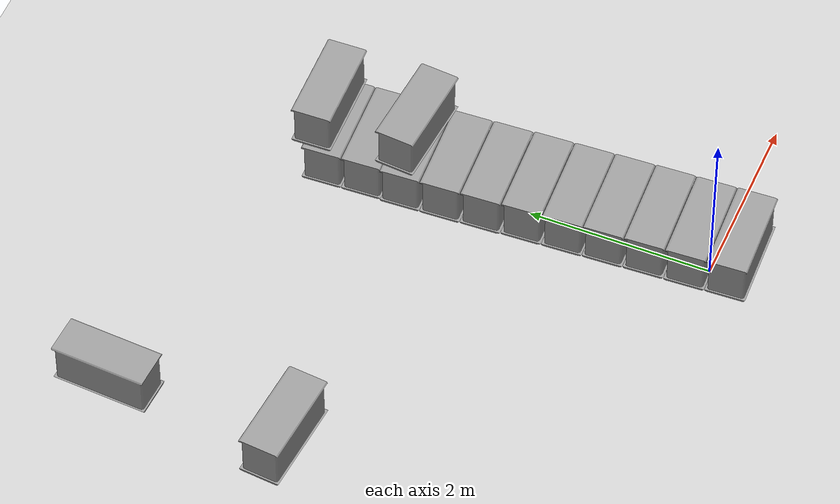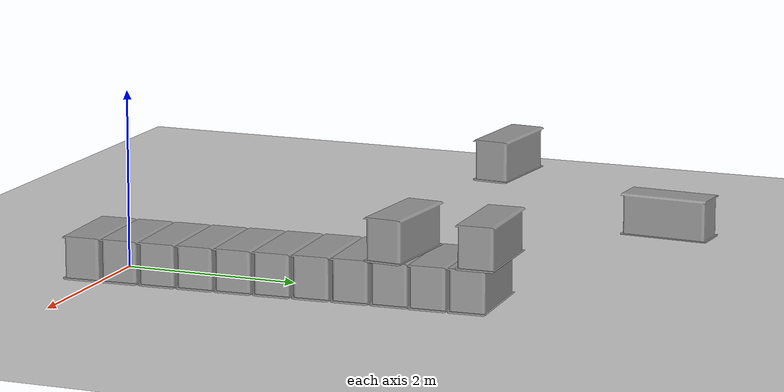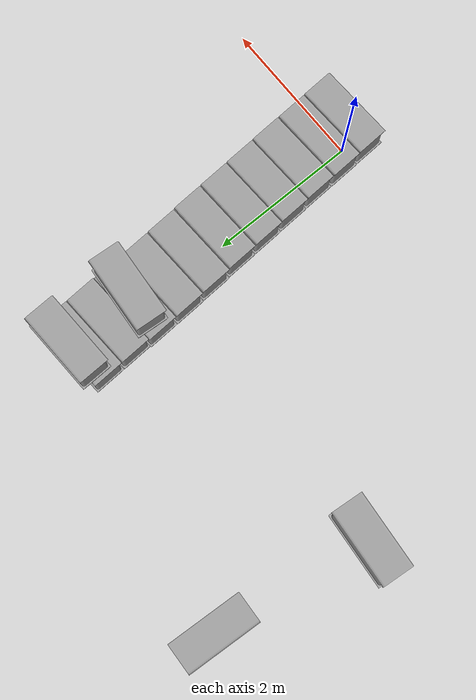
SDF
<sdf version="1.7">
 <world name="default">
  <model name="ground_plane">
   <static>1</static>
   <link name="link">
    <collision name="collision">
     <geometry><plane><normal>0 0 1</normal><size>100 100</size></plane></geometry>
     <surface>
      <contact><collide_bitmask>65535</collide_bitmask></contact>
      <friction><ode><mu>100</mu><mu2>50</mu2></ode></friction>
     </surface>
    </collision>
    <visual name="visual">
     <cast_shadows>0</cast_shadows>
     <geometry><plane><normal>0 0 1</normal><size>100 100</size></plane></geometry>
     <material>
      <script><uri>file://media/materials/scripts/gazebo.material</uri><name>Gazebo/Grey</name></script>
     </material>
    </visual>
   </link>
  </model>
  <model name="cotton_heng_0">
   <model name="cotton_me">
    <link name="link_1">
     <inertial>
      <mass>1</mass>
      <inertia>
       <ixx>0.166667</ixx>
       <ixy>0</ixy>
       <ixz>0</ixz>
       <iyy>0.166667</iyy>
       <iyz>0</iyz>
       <izz>0.166667</izz>
      </inertia>
     </inertial>
     <visual name="visual">
      <geometry><mesh><uri>/home/cyun/cotton_box.stl</uri><scale>1 1 1</scale></mesh></geometry>
      <material>
       <lighting>1</lighting>
       <script><uri>file://media/materials/scripts/gazebo.material</uri><name>Gazebo/Grey</name></script>
       <shader type="pixel"/>
      </material>
     </visual>
     <collision name="collision">
      <geometry><mesh><uri>/home/cyun/cotton_box.stl</uri><scale>1 1 1</scale></mesh></geometry>
      <surface>
       <friction>
        <ode><mu>1</mu><mu2>1</mu2><fdir1>0 0 0</fdir1><slip1>0</slip1><slip2>0</slip2></ode>
        <torsional>
         <coefficient>1</coefficient>
         <patch_radius>0</patch_radius>
         <surface_radius>0</surface_radius>
         <use_patch_radius>1</use_patch_radius>
         <ode><slip>0</slip></ode>
        </torsional>
       </friction>
       <bounce><restitution_coefficient>0</restitution_coefficient><threshold>1e+06</threshold></bounce>
       <contact>
        <collide_without_contact>0</collide_without_contact>
        <collide_without_contact_bitmask>1</collide_without_contact_bitmask>
        <collide_bitmask>1</collide_bitmask>
        <ode>
         <soft_cfm>0</soft_cfm>
         <soft_erp>0.2</soft_erp>
         <kp>1e+13</kp>
         <kd>1</kd>
         <max_vel>0.01</max_vel>
         <min_depth>0</min_depth>
        </ode>
        <bullet>
         <split_impulse>1</split_impulse>
         <split_impulse_penetration_threshold>-0.01</split_impulse_penetration_threshold>
         <soft_cfm>0</soft_cfm>
         <soft_erp>0.2</soft_erp>
         <kp>1e+13</kp>
         <kd>1</kd>
        </bullet>
       </contact>
      </surface>
     </collision>
    </link>
    <static>0</static>
    <pose>-1.77996 -0.007813 0 0 -0 0</pose>
   </model>
   <model name="cotton_me_clone">
    <link name="link_1">
     <inertial>
      <mass>1</mass>
      <inertia>
       <ixx>0.166667</ixx>
       <ixy>0</ixy>
       <ixz>0</ixz>
       <iyy>0.166667</iyy>
       <iyz>0</iyz>
       <izz>0.166667</izz>
      </inertia>
     </inertial>
     <visual name="visual">
      <geometry><mesh><uri>/home/cyun/cotton_box.stl</uri><scale>1 1 1</scale></mesh></geometry>
      <material>
       <lighting>1</lighting>
       <script><uri>file://media/materials/scripts/gazebo.material</uri><name>Gazebo/Grey</name></script>
       <shader type="pixel"/>
      </material>
     </visual>
     <collision name="collision">
      <geometry><mesh><uri>/home/cyun/cotton_box.stl</uri><scale>1 1 1</scale></mesh></geometry>
      <surface>
       <friction>
        <ode><mu>1</mu><mu2>1</mu2><fdir1>0 0 0</fdir1><slip1>0</slip1><slip2>0</slip2></ode>
        <torsional>
         <coefficient>1</coefficient>
         <patch_radius>0</patch_radius>
         <surface_radius>0</surface_radius>
         <use_patch_radius>1</use_patch_radius>
         <ode><slip>0</slip></ode>
        </torsional>
       </friction>
       <bounce><restitution_coefficient>0</restitution_coefficient><threshold>1e+06</threshold></bounce>
       <contact>
        <collide_without_contact>0</collide_without_contact>
        <collide_without_contact_bitmask>1</collide_without_contact_bitmask>
        <collide_bitmask>1</collide_bitmask>
        <ode>
         <soft_cfm>0</soft_cfm>
         <soft_erp>0.2</soft_erp>
         <kp>1e+13</kp>
         <kd>1</kd>
         <max_vel>0.01</max_vel>
         <min_depth>0</min_depth>
        </ode>
        <bullet>
         <split_impulse>1</split_impulse>
         <split_impulse_penetration_threshold>-0.01</split_impulse_penetration_threshold>
         <soft_cfm>0</soft_cfm>
         <soft_erp>0.2</soft_erp>
         <kp>1e+13</kp>
         <kd>1</kd>
        </bullet>
       </contact>
      </surface>
     </collision>
    </link>
    <static>0</static>
    <pose>-1.33368 -0.009895 0 0 -0 0</pose>
   </model>
   <model name="cotton_me_clone_0">
    <link name="link_1">
     <inertial>
      <mass>1</mass>
      <inertia>
       <ixx>0.166667</ixx>
       <ixy>0</ixy>
       <ixz>0</ixz>
       <iyy>0.166667</iyy>
       <iyz>0</iyz>
       <izz>0.166667</izz>
      </inertia>
     </inertial>
     <visual name="visual">
      <geometry><mesh><uri>/home/cyun/cotton_box.stl</uri><scale>1 1 1</scale></mesh></geometry>
      <material>
       <lighting>1</lighting>
       <script><uri>file://media/materials/scripts/gazebo.material</uri><name>Gazebo/Grey</name></script>
       <shader type="pixel"/>
      </material>
     </visual>
     <collision name="collision">
      <geometry><mesh><uri>/home/cyun/cotton_box.stl</uri><scale>1 1 1</scale></mesh></geometry>
      <surface>
       <friction>
        <ode><mu>1</mu><mu2>1</mu2><fdir1>0 0 0</fdir1><slip1>0</slip1><slip2>0</slip2></ode>
        <torsional>
         <coefficient>1</coefficient>
         <patch_radius>0</patch_radius>
         <surface_radius>0</surface_radius>
         <use_patch_radius>1</use_patch_radius>
         <ode><slip>0</slip></ode>
        </torsional>
       </friction>
       <bounce><restitution_coefficient>0</restitution_coefficient><threshold>1e+06</threshold></bounce>
       <contact>
        <collide_without_contact>0</collide_without_contact>
        <collide_without_contact_bitmask>1</collide_without_contact_bitmask>
        <collide_bitmask>1</collide_bitmask>
        <ode>
         <soft_cfm>0</soft_cfm>
         <soft_erp>0.2</soft_erp>
         <kp>1e+13</kp>
         <kd>1</kd>
         <max_vel>0.01</max_vel>
         <min_depth>0</min_depth>
        </ode>
        <bullet>
         <split_impulse>1</split_impulse>
         <split_impulse_penetration_threshold>-0.01</split_impulse_penetration_threshold>
         <soft_cfm>0</soft_cfm>
         <soft_erp>0.2</soft_erp>
         <kp>1e+13</kp>
         <kd>1</kd>
        </bullet>
       </contact>
      </surface>
     </collision>
    </link>
    <static>0</static>
    <pose>-0.889452 -0.005774 0 0 -0 0</pose>
   </model>
   <model name="cotton_me_clone_1">
    <link name="link_1">
     <inertial>
      <mass>1</mass>
      <inertia>
       <ixx>0.166667</ixx>
       <ixy>0</ixy>
       <ixz>0</ixz>
       <iyy>0.166667</iyy>
       <iyz>0</iyz>
       <izz>0.166667</izz>
      </inertia>
     </inertial>
     <visual name="visual">
      <geometry><mesh><uri>/home/cyun/cotton_box.stl</uri><scale>1 1 1</scale></mesh></geometry>
      <material>
       <lighting>1</lighting>
       <script><uri>file://media/materials/scripts/gazebo.material</uri><name>Gazebo/Grey</name></script>
       <shader type="pixel"/>
      </material>
     </visual>
     <collision name="collision">
      <geometry><mesh><uri>/home/cyun/cotton_box.stl</uri><scale>1 1 1</scale></mesh></geometry>
      <surface>
       <friction>
        <ode><mu>1</mu><mu2>1</mu2><fdir1>0 0 0</fdir1><slip1>0</slip1><slip2>0</slip2></ode>
        <torsional>
         <coefficient>1</coefficient>
         <patch_radius>0</patch_radius>
         <surface_radius>0</surface_radius>
         <use_patch_radius>1</use_patch_radius>
         <ode><slip>0</slip></ode>
        </torsional>
       </friction>
       <bounce><restitution_coefficient>0</restitution_coefficient><threshold>1e+06</threshold></bounce>
       <contact>
        <collide_without_contact>0</collide_without_contact>
        <collide_without_contact_bitmask>1</collide_without_contact_bitmask>
        <collide_bitmask>1</collide_bitmask>
        <ode>
         <soft_cfm>0</soft_cfm>
         <soft_erp>0.2</soft_erp>
         <kp>1e+13</kp>
         <kd>1</kd>
         <max_vel>0.01</max_vel>
         <min_depth>0</min_depth>
        </ode>
        <bullet>
         <split_impulse>1</split_impulse>
         <split_impulse_penetration_threshold>-0.01</split_impulse_penetration_threshold>
         <soft_cfm>0</soft_cfm>
         <soft_erp>0.2</soft_erp>
         <kp>1e+13</kp>
         <kd>1</kd>
        </bullet>
       </contact>
      </surface>
     </collision>
    </link>
    <static>0</static>
    <pose>-0.445737 -0.001627 0 0 -0 0</pose>
   </model>
   <model name="cotton_me_clone_2">
    <link name="link_1">
     <inertial>
      <mass>1</mass>
      <inertia>
       <ixx>0.166667</ixx>
       <ixy>0</ixy>
       <ixz>0</ixz>
       <iyy>0.166667</iyy>
       <iyz>0</iyz>
       <izz>0.166667</izz>
      </inertia>
     </inertial>
     <visual name="visual">
      <geometry><mesh><uri>/home/cyun/cotton_box.stl</uri><scale>1 1 1</scale></mesh></geometry>
      <material>
       <lighting>1</lighting>
       <script><uri>file://media/materials/scripts/gazebo.material</uri><name>Gazebo/Grey</name></script>
       <shader type="pixel"/>
      </material>
     </visual>
     <collision name="collision">
      <geometry><mesh><uri>/home/cyun/cotton_box.stl</uri><scale>1 1 1</scale></mesh></geometry>
      <surface>
       <friction>
        <ode><mu>1</mu><mu2>1</mu2><fdir1>0 0 0</fdir1><slip1>0</slip1><slip2>0</slip2></ode>
        <torsional>
         <coefficient>1</coefficient>
         <patch_radius>0</patch_radius>
         <surface_radius>0</surface_radius>
         <use_patch_radius>1</use_patch_radius>
         <ode><slip>0</slip></ode>
        </torsional>
       </friction>
       <bounce><restitution_coefficient>0</restitution_coefficient><threshold>1e+06</threshold></bounce>
       <contact>
        <collide_without_contact>0</collide_without_contact>
        <collide_without_contact_bitmask>1</collide_without_contact_bitmask>
        <collide_bitmask>1</collide_bitmask>
        <ode>
         <soft_cfm>0</soft_cfm>
         <soft_erp>0.2</soft_erp>
         <kp>1e+13</kp>
         <kd>1</kd>
         <max_vel>0.01</max_vel>
         <min_depth>0</min_depth>
        </ode>
        <bullet>
         <split_impulse>1</split_impulse>
         <split_impulse_penetration_threshold>-0.01</split_impulse_penetration_threshold>
         <soft_cfm>0</soft_cfm>
         <soft_erp>0.2</soft_erp>
         <kp>1e+13</kp>
         <kd>1</kd>
        </bullet>
       </contact>
      </surface>
     </collision>
    </link>
    <static>0</static>
    <pose>0.001194 0.000886 0 0 -0 0</pose>
   </model>
   <model name="cotton_me_clone_3">
    <link name="link_1">
     <inertial>
      <mass>1</mass>
      <inertia>
       <ixx>0.166667</ixx>
       <ixy>0</ixy>
       <ixz>0</ixz>
       <iyy>0.166667</iyy>
       <iyz>0</iyz>
       <izz>0.166667</izz>
      </inertia>
     </inertial>
     <visual name="visual">
      <geometry><mesh><uri>/home/cyun/cotton_box.stl</uri><scale>1 1 1</scale></mesh></geometry>
      <material>
       <lighting>1</lighting>
       <script><uri>file://media/materials/scripts/gazebo.material</uri><name>Gazebo/Grey</name></script>
       <shader type="pixel"/>
      </material>
     </visual>
     <collision name="collision">
      <geometry><mesh><uri>/home/cyun/cotton_box.stl</uri><scale>1 1 1</scale></mesh></geometry>
      <surface>
       <friction>
        <ode><mu>1</mu><mu2>1</mu2><fdir1>0 0 0</fdir1><slip1>0</slip1><slip2>0</slip2></ode>
        <torsional>
         <coefficient>1</coefficient>
         <patch_radius>0</patch_radius>
         <surface_radius>0</surface_radius>
         <use_patch_radius>1</use_patch_radius>
         <ode><slip>0</slip></ode>
        </torsional>
       </friction>
       <bounce><restitution_coefficient>0</restitution_coefficient><threshold>1e+06</threshold></bounce>
       <contact>
        <collide_without_contact>0</collide_without_contact>
        <collide_without_contact_bitmask>1</collide_without_contact_bitmask>
        <collide_bitmask>1</collide_bitmask>
        <ode>
         <soft_cfm>0</soft_cfm>
         <soft_erp>0.2</soft_erp>
         <kp>1e+13</kp>
         <kd>1</kd>
         <max_vel>0.01</max_vel>
         <min_depth>0</min_depth>
        </ode>
        <bullet>
         <split_impulse>1</split_impulse>
         <split_impulse_penetration_threshold>-0.01</split_impulse_penetration_threshold>
         <soft_cfm>0</soft_cfm>
         <soft_erp>0.2</soft_erp>
         <kp>1e+13</kp>
         <kd>1</kd>
        </bullet>
       </contact>
      </surface>
     </collision>
    </link>
    <static>0</static>
    <pose>0.448503 0.010252 0 0 -0 0</pose>
   </model>
   <model name="cotton_me_clone_4">
    <link name="link_1">
     <inertial>
      <mass>1</mass>
      <inertia>
       <ixx>0.166667</ixx>
       <ixy>0</ixy>
       <ixz>0</ixz>
       <iyy>0.166667</iyy>
       <iyz>0</iyz>
       <izz>0.166667</izz>
      </inertia>
     </inertial>
     <visual name="visual">
      <geometry><mesh><uri>/home/cyun/cotton_box.stl</uri><scale>1 1 1</scale></mesh></geometry>
      <material>
       <lighting>1</lighting>
       <script><uri>file://media/materials/scripts/gazebo.material</uri><name>Gazebo/Grey</name></script>
       <shader type="pixel"/>
      </material>
     </visual>
     <collision name="collision">
      <geometry><mesh><uri>/home/cyun/cotton_box.stl</uri><scale>1 1 1</scale></mesh></geometry>
      <surface>
       <friction>
        <ode><mu>1</mu><mu2>1</mu2><fdir1>0 0 0</fdir1><slip1>0</slip1><slip2>0</slip2></ode>
        <torsional>
         <coefficient>1</coefficient>
         <patch_radius>0</patch_radius>
         <surface_radius>0</surface_radius>
         <use_patch_radius>1</use_patch_radius>
         <ode><slip>0</slip></ode>
        </torsional>
       </friction>
       <bounce><restitution_coefficient>0</restitution_coefficient><threshold>1e+06</threshold></bounce>
       <contact>
        <collide_without_contact>0</collide_without_contact>
        <collide_without_contact_bitmask>1</collide_without_contact_bitmask>
        <collide_bitmask>1</collide_bitmask>
        <ode>
         <soft_cfm>0</soft_cfm>
         <soft_erp>0.2</soft_erp>
         <kp>1e+13</kp>
         <kd>1</kd>
         <max_vel>0.01</max_vel>
         <min_depth>0</min_depth>
        </ode>
        <bullet>
         <split_impulse>1</split_impulse>
         <split_impulse_penetration_threshold>-0.01</split_impulse_penetration_threshold>
         <soft_cfm>0</soft_cfm>
         <soft_erp>0.2</soft_erp>
         <kp>1e+13</kp>
         <kd>1</kd>
        </bullet>
       </contact>
      </surface>
     </collision>
    </link>
    <static>0</static>
    <pose>0.894659 0.014624 0 0 -0 0</pose>
   </model>
   <model name="cotton_me_clone_5">
    <link name="link_1">
     <inertial>
      <mass>1</mass>
      <inertia>
       <ixx>0.166667</ixx>
       <ixy>0</ixy>
       <ixz>0</ixz>
       <iyy>0.166667</iyy>
       <iyz>0</iyz>
       <izz>0.166667</izz>
      </inertia>
     </inertial>
     <visual name="visual">
      <geometry><mesh><uri>/home/cyun/cotton_box.stl</uri><scale>1 1 1</scale></mesh></geometry>
      <material>
       <lighting>1</lighting>
       <script><uri>file://media/materials/scripts/gazebo.material</uri><name>Gazebo/Grey</name></script>
       <shader type="pixel"/>
      </material>
     </visual>
     <collision name="collision">
      <geometry><mesh><uri>/home/cyun/cotton_box.stl</uri><scale>1 1 1</scale></mesh></geometry>
      <surface>
       <friction>
        <ode><mu>1</mu><mu2>1</mu2><fdir1>0 0 0</fdir1><slip1>0</slip1><slip2>0</slip2></ode>
        <torsional>
         <coefficient>1</coefficient>
         <patch_radius>0</patch_radius>
         <surface_radius>0</surface_radius>
         <use_patch_radius>1</use_patch_radius>
         <ode><slip>0</slip></ode>
        </torsional>
       </friction>
       <bounce><restitution_coefficient>0</restitution_coefficient><threshold>1e+06</threshold></bounce>
       <contact>
        <collide_without_contact>0</collide_without_contact>
        <collide_without_contact_bitmask>1</collide_without_contact_bitmask>
        <collide_bitmask>1</collide_bitmask>
        <ode>
         <soft_cfm>0</soft_cfm>
         <soft_erp>0.2</soft_erp>
         <kp>1e+13</kp>
         <kd>1</kd>
         <max_vel>0.01</max_vel>
         <min_depth>0</min_depth>
        </ode>
        <bullet>
         <split_impulse>1</split_impulse>
         <split_impulse_penetration_threshold>-0.01</split_impulse_penetration_threshold>
         <soft_cfm>0</soft_cfm>
         <soft_erp>0.2</soft_erp>
         <kp>1e+13</kp>
         <kd>1</kd>
        </bullet>
       </contact>
      </surface>
     </collision>
    </link>
    <static>0</static>
    <pose>1.33945 0.013464 0 0 -0 0</pose>
   </model>
   <model name="cotton_me_clone_6">
    <link name="link_1">
     <inertial>
      <mass>1</mass>
      <inertia>
       <ixx>0.166667</ixx>
       <ixy>0</ixy>
       <ixz>0</ixz>
       <iyy>0.166667</iyy>
       <iyz>0</iyz>
       <izz>0.166667</izz>
      </inertia>
     </inertial>
     <visual name="visual">
      <geometry><mesh><uri>/home/cyun/cotton_box.stl</uri><scale>1 1 1</scale></mesh></geometry>
      <material>
       <lighting>1</lighting>
       <script><uri>file://media/materials/scripts/gazebo.material</uri><name>Gazebo/Grey</name></script>
       <shader type="pixel"/>
      </material>
     </visual>
     <collision name="collision">
      <geometry><mesh><uri>/home/cyun/cotton_box.stl</uri><scale>1 1 1</scale></mesh></geometry>
      <surface>
       <friction>
        <ode><mu>1</mu><mu2>1</mu2><fdir1>0 0 0</fdir1><slip1>0</slip1><slip2>0</slip2></ode>
        <torsional>
         <coefficient>1</coefficient>
         <patch_radius>0</patch_radius>
         <surface_radius>0</surface_radius>
         <use_patch_radius>1</use_patch_radius>
         <ode><slip>0</slip></ode>
        </torsional>
       </friction>
       <bounce><restitution_coefficient>0</restitution_coefficient><threshold>1e+06</threshold></bounce>
       <contact>
        <collide_without_contact>0</collide_without_contact>
        <collide_without_contact_bitmask>1</collide_without_contact_bitmask>
        <collide_bitmask>1</collide_bitmask>
        <ode>
         <soft_cfm>0</soft_cfm>
         <soft_erp>0.2</soft_erp>
         <kp>1e+13</kp>
         <kd>1</kd>
         <max_vel>0.01</max_vel>
         <min_depth>0</min_depth>
        </ode>
        <bullet>
         <split_impulse>1</split_impulse>
         <split_impulse_penetration_threshold>-0.01</split_impulse_penetration_threshold>
         <soft_cfm>0</soft_cfm>
         <soft_erp>0.2</soft_erp>
         <kp>1e+13</kp>
         <kd>1</kd>
        </bullet>
       </contact>
      </surface>
     </collision>
    </link>
    <static>0</static>
    <pose>1.77292 -0.000762 0 0 -0 0</pose>
   </model>
   <model name="cotton_me_clone_7">
    <link name="link_1">
     <inertial>
      <mass>1</mass>
      <inertia>
       <ixx>0.166667</ixx>
       <ixy>0</ixy>
       <ixz>0</ixz>
       <iyy>0.166667</iyy>
       <iyz>0</iyz>
       <izz>0.166667</izz>
      </inertia>
     </inertial>
     <visual name="visual">
      <geometry><mesh><uri>/home/cyun/cotton_box.stl</uri><scale>1 1 1</scale></mesh></geometry>
      <material>
       <lighting>1</lighting>
       <script><uri>file://media/materials/scripts/gazebo.material</uri><name>Gazebo/Grey</name></script>
       <shader type="pixel"/>
      </material>
     </visual>
     <collision name="collision">
      <geometry><mesh><uri>/home/cyun/cotton_box.stl</uri><scale>1 1 1</scale></mesh></geometry>
      <surface>
       <friction>
        <ode><mu>1</mu><mu2>1</mu2><fdir1>0 0 0</fdir1><slip1>0</slip1><slip2>0</slip2></ode>
        <torsional>
         <coefficient>1</coefficient>
         <patch_radius>0</patch_radius>
         <surface_radius>0</surface_radius>
         <use_patch_radius>1</use_patch_radius>
         <ode><slip>0</slip></ode>
        </torsional>
       </friction>
       <bounce><restitution_coefficient>0</restitution_coefficient><threshold>1e+06</threshold></bounce>
       <contact>
        <collide_without_contact>0</collide_without_contact>
        <collide_without_contact_bitmask>1</collide_without_contact_bitmask>
        <collide_bitmask>1</collide_bitmask>
        <ode>
         <soft_cfm>0</soft_cfm>
         <soft_erp>0.2</soft_erp>
         <kp>1e+13</kp>
         <kd>1</kd>
         <max_vel>0.01</max_vel>
         <min_depth>0</min_depth>
        </ode>
        <bullet>
         <split_impulse>1</split_impulse>
         <split_impulse_penetration_threshold>-0.01</split_impulse_penetration_threshold>
         <soft_cfm>0</soft_cfm>
         <soft_erp>0.2</soft_erp>
         <kp>1e+13</kp>
         <kd>1</kd>
        </bullet>
       </contact>
      </surface>
     </collision>
    </link>
    <static>0</static>
    <pose>2.21576 -0.001881 0 0 -0 0</pose>
   </model>
   <model name="cotton_me_clone_8">
    <link name="link_1">
     <inertial>
      <mass>1</mass>
      <inertia>
       <ixx>0.166667</ixx>
       <ixy>0</ixy>
       <ixz>0</ixz>
       <iyy>0.166667</iyy>
       <iyz>0</iyz>
       <izz>0.166667</izz>
      </inertia>
     </inertial>
     <visual name="visual">
      <geometry><mesh><uri>/home/cyun/cotton_box.stl</uri><scale>1 1 1</scale></mesh></geometry>
      <material>
       <lighting>1</lighting>
       <script><uri>file://media/materials/scripts/gazebo.material</uri><name>Gazebo/Grey</name></script>
       <shader type="pixel"/>
      </material>
     </visual>
     <collision name="collision">
      <geometry><mesh><uri>/home/cyun/cotton_box.stl</uri><scale>1 1 1</scale></mesh></geometry>
      <surface>
       <friction>
        <ode><mu>1</mu><mu2>1</mu2><fdir1>0 0 0</fdir1><slip1>0</slip1><slip2>0</slip2></ode>
        <torsional>
         <coefficient>1</coefficient>
         <patch_radius>0</patch_radius>
         <surface_radius>0</surface_radius>
         <use_patch_radius>1</use_patch_radius>
         <ode><slip>0</slip></ode>
        </torsional>
       </friction>
       <bounce><restitution_coefficient>0</restitution_coefficient><threshold>1e+06</threshold></bounce>
       <contact>
        <collide_without_contact>0</collide_without_contact>
        <collide_without_contact_bitmask>1</collide_without_contact_bitmask>
        <collide_bitmask>1</collide_bitmask>
        <ode>
         <soft_cfm>0</soft_cfm>
         <soft_erp>0.2</soft_erp>
         <kp>1e+13</kp>
         <kd>1</kd>
         <max_vel>0.01</max_vel>
         <min_depth>0</min_depth>
        </ode>
        <bullet>
         <split_impulse>1</split_impulse>
         <split_impulse_penetration_threshold>-0.01</split_impulse_penetration_threshold>
         <soft_cfm>0</soft_cfm>
         <soft_erp>0.2</soft_erp>
         <kp>1e+13</kp>
         <kd>1</kd>
        </bullet>
       </contact>
      </surface>
     </collision>
    </link>
    <static>0</static>
    <pose>-2.22367 -0.011477 0 0 -0 0</pose>
   </model>
   <static>0</static>
   <pose>0.161631 1.9892 0.020013 1.5e-05 -1.1e-05 1.61594</pose>
  </model>
  <model name="cotton_me_0_clone_6_clone_0_clone">
   <link name="link_1">
    <inertial>
     <mass>1</mass>
     <inertia>
      <ixx>0.166667</ixx>
      <ixy>0</ixy>
      <ixz>0</ixz>
      <iyy>0.166667</iyy>
      <iyz>0</iyz>
      <izz>0.166667</izz>
     </inertia>
    </inertial>
    <visual name="visual">
     <geometry><mesh><uri>/home/cyun/cotton_box.stl</uri><scale>1 1 1</scale></mesh></geometry>
     <material>
      <lighting>1</lighting>
      <script><uri>file://media/materials/scripts/gazebo.material</uri><name>Gazebo/Grey</name></script>
      <shader type="pixel"/>
     </material>
    </visual>
    <collision name="collision">
     <geometry><mesh><uri>/home/cyun/cotton_box.stl</uri><scale>1 1 1</scale></mesh></geometry>
     <surface>
      <friction>
       <ode><mu>1</mu><mu2>1</mu2><fdir1>0 0 0</fdir1><slip1>0</slip1><slip2>0</slip2></ode>
       <torsional>
        <coefficient>1</coefficient>
        <patch_radius>0</patch_radius>
        <surface_radius>0</surface_radius>
        <use_patch_radius>1</use_patch_radius>
        <ode><slip>0</slip></ode>
       </torsional>
      </friction>
      <bounce><restitution_coefficient>0</restitution_coefficient><threshold>1e+06</threshold></bounce>
      <contact>
       <collide_without_contact>0</collide_without_contact>
       <collide_without_contact_bitmask>1</collide_without_contact_bitmask>
       <collide_bitmask>1</collide_bitmask>
       <ode>
        <soft_cfm>0</soft_cfm>
        <soft_erp>0.2</soft_erp>
        <kp>1e+13</kp>
        <kd>1</kd>
        <max_vel>0.01</max_vel>
        <min_depth>0</min_depth>
       </ode>
       <bullet>
        <split_impulse>1</split_impulse>
        <split_impulse_penetration_threshold>-0.01</split_impulse_penetration_threshold>
        <soft_cfm>0</soft_cfm>
        <soft_erp>0.2</soft_erp>
        <kp>1e+13</kp>
        <kd>1</kd>
       </bullet>
      </contact>
     </surface>
    </collision>
   </link>
   <static>0</static>
   <pose>0.113616 4.32157 0.509992 -0 1.3e-05 1.59785</pose>
  </model>
  <model name="cotton_me_0_clone_6_clone_0_clone_clone_0">
   <link name="link_1">
    <inertial>
     <mass>1</mass>
     <inertia>
      <ixx>0.166667</ixx>
      <ixy>0</ixy>
      <ixz>0</ixz>
      <iyy>0.166667</iyy>
      <iyz>0</iyz>
      <izz>0.166667</izz>
     </inertia>
    </inertial>
    <visual name="visual">
     <geometry><mesh><uri>/home/cyun/cotton_box.stl</uri><scale>1 1 1</scale></mesh></geometry>
     <material>
      <lighting>1</lighting>
      <script><uri>file://media/materials/scripts/gazebo.material</uri><name>Gazebo/Grey</name></script>
      <shader type="pixel"/>
     </material>
    </visual>
    <collision name="collision">
     <geometry><mesh><uri>/home/cyun/cotton_box.stl</uri><scale>1 1 1</scale></mesh></geometry>
     <surface>
      <friction>
       <ode><mu>1</mu><mu2>1</mu2><fdir1>0 0 0</fdir1><slip1>0</slip1><slip2>0</slip2></ode>
       <torsional>
        <coefficient>1</coefficient>
        <patch_radius>0</patch_radius>
        <surface_radius>0</surface_radius>
        <use_patch_radius>1</use_patch_radius>
        <ode><slip>0</slip></ode>
       </torsional>
      </friction>
      <bounce><restitution_coefficient>0</restitution_coefficient><threshold>1e+06</threshold></bounce>
      <contact>
       <collide_without_contact>0</collide_without_contact>
       <collide_without_contact_bitmask>1</collide_without_contact_bitmask>
       <collide_bitmask>1</collide_bitmask>
       <ode>
        <soft_cfm>0</soft_cfm>
        <soft_erp>0.2</soft_erp>
        <kp>1e+13</kp>
        <kd>1</kd>
        <max_vel>0.01</max_vel>
        <min_depth>0</min_depth>
       </ode>
       <bullet>
        <split_impulse>1</split_impulse>
        <split_impulse_penetration_threshold>-0.01</split_impulse_penetration_threshold>
        <soft_cfm>0</soft_cfm>
        <soft_erp>0.2</soft_erp>
        <kp>1e+13</kp>
        <kd>1</kd>
       </bullet>
      </contact>
     </surface>
    </collision>
   </link>
   <static>0</static>
   <pose>0.160537 3.34932 0.510002 -1.4e-05 -7e-06 1.48968</pose>
  </model>
  <model name="cotton_me_0_clone_6_clone_0_clone_clone_10">
   <link name="link_1">
    <inertial>
     <mass>1</mass>
     <inertia>
      <ixx>0.166667</ixx>
      <ixy>0</ixy>
      <ixz>0</ixz>
      <iyy>0.166667</iyy>
      <iyz>0</iyz>
      <izz>0.166667</izz>
     </inertia>
    </inertial>
    <visual name="visual">
     <geometry><mesh><uri>/home/cyun/cotton_box.stl</uri><scale>1 1 1</scale></mesh></geometry>
     <material>
      <lighting>1</lighting>
      <script><uri>file://media/materials/scripts/gazebo.material</uri><name>Gazebo/Grey</name></script>
      <shader type="pixel"/>
     </material>
    </visual>
    <collision name="collision">
     <geometry><mesh><uri>/home/cyun/cotton_box.stl</uri><scale>1 1 1</scale></mesh></geometry>
     <surface>
      <friction>
       <ode><mu>1</mu><mu2>1</mu2><fdir1>0 0 0</fdir1><slip1>0</slip1><slip2>0</slip2></ode>
       <torsional>
        <coefficient>1</coefficient>
        <patch_radius>0</patch_radius>
        <surface_radius>0</surface_radius>
        <use_patch_radius>1</use_patch_radius>
        <ode><slip>0</slip></ode>
       </torsional>
      </friction>
      <bounce><restitution_coefficient>0</restitution_coefficient><threshold>1e+06</threshold></bounce>
      <contact>
       <collide_without_contact>0</collide_without_contact>
       <collide_without_contact_bitmask>1</collide_without_contact_bitmask>
       <collide_bitmask>1</collide_bitmask>
       <ode>
        <soft_cfm>0</soft_cfm>
        <soft_erp>0.2</soft_erp>
        <kp>1e+13</kp>
        <kd>1</kd>
        <max_vel>0.01</max_vel>
        <min_depth>0</min_depth>
       </ode>
       <bullet>
        <split_impulse>1</split_impulse>
        <split_impulse_penetration_threshold>-0.01</split_impulse_penetration_threshold>
        <soft_cfm>0</soft_cfm>
        <soft_erp>0.2</soft_erp>
        <kp>1e+13</kp>
        <kd>1</kd>
       </bullet>
      </contact>
     </surface>
    </collision>
   </link>
   <static>0</static>
   <pose>-3.66472 5.14197 0.019995 1e-05 -0 3.08184</pose>
  </model>
  <model name="cotton_me_0_clone_6_clone_0_clone_clone_14">
   <link name="link_1">
    <inertial>
     <mass>1</mass>
     <inertia>
      <ixx>0.166667</ixx>
      <ixy>0</ixy>
      <ixz>0</ixz>
      <iyy>0.166667</iyy>
      <iyz>0</iyz>
      <izz>0.166667</izz>
     </inertia>
    </inertial>
    <visual name="visual">
     <geometry><mesh><uri>/home/cyun/cotton_box.stl</uri><scale>1 1 1</scale></mesh></geometry>
     <material>
      <lighting>1</lighting>
      <script><uri>file://media/materials/scripts/gazebo.material</uri><name>Gazebo/Grey</name></script>
      <shader type="pixel"/>
     </material>
    </visual>
    <collision name="collision">
     <geometry><mesh><uri>/home/cyun/cotton_box.stl</uri><scale>1 1 1</scale></mesh></geometry>
     <surface>
      <friction>
       <ode><mu>1</mu><mu2>1</mu2><fdir1>0 0 0</fdir1><slip1>0</slip1><slip2>0</slip2></ode>
       <torsional>
        <coefficient>1</coefficient>
        <patch_radius>0</patch_radius>
        <surface_radius>0</surface_radius>
        <use_patch_radius>1</use_patch_radius>
        <ode><slip>0</slip></ode>
       </torsional>
      </friction>
      <bounce><restitution_coefficient>0</restitution_coefficient><threshold>1e+06</threshold></bounce>
      <contact>
       <collide_without_contact>0</collide_without_contact>
       <collide_without_contact_bitmask>1</collide_without_contact_bitmask>
       <collide_bitmask>1</collide_bitmask>
       <ode>
        <soft_cfm>0</soft_cfm>
        <soft_erp>0.2</soft_erp>
        <kp>1e+13</kp>
        <kd>1</kd>
        <max_vel>0.01</max_vel>
        <min_depth>0</min_depth>
       </ode>
       <bullet>
        <split_impulse>1</split_impulse>
        <split_impulse_penetration_threshold>-0.01</split_impulse_penetration_threshold>
        <soft_cfm>0</soft_cfm>
        <soft_erp>0.2</soft_erp>
        <kp>1e+13</kp>
        <kd>1</kd>
       </bullet>
      </contact>
     </surface>
    </collision>
   </link>
   <static>0</static>
   <pose>-4.00128 3.03965 0.510071 -0.000101 -2.1e-05 1.48195</pose>
  </model>
 </world>
</sdf>
